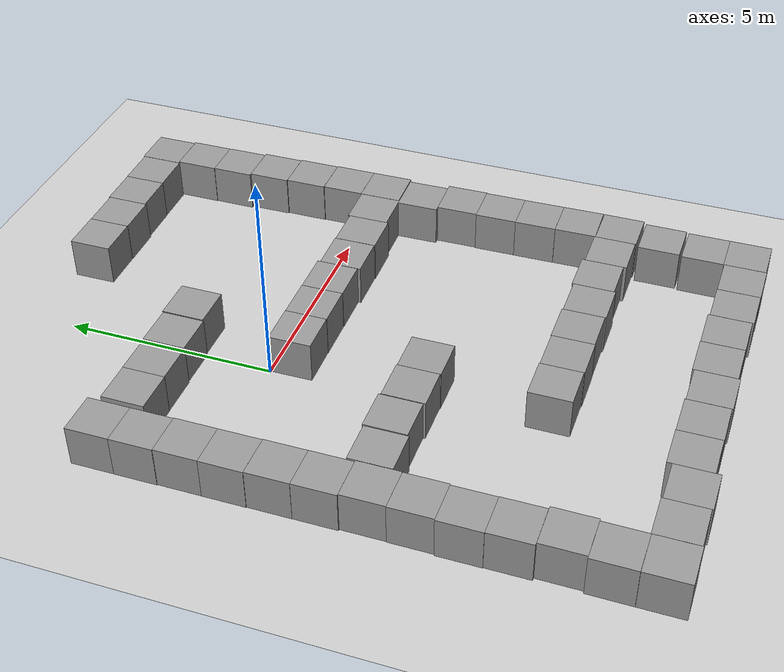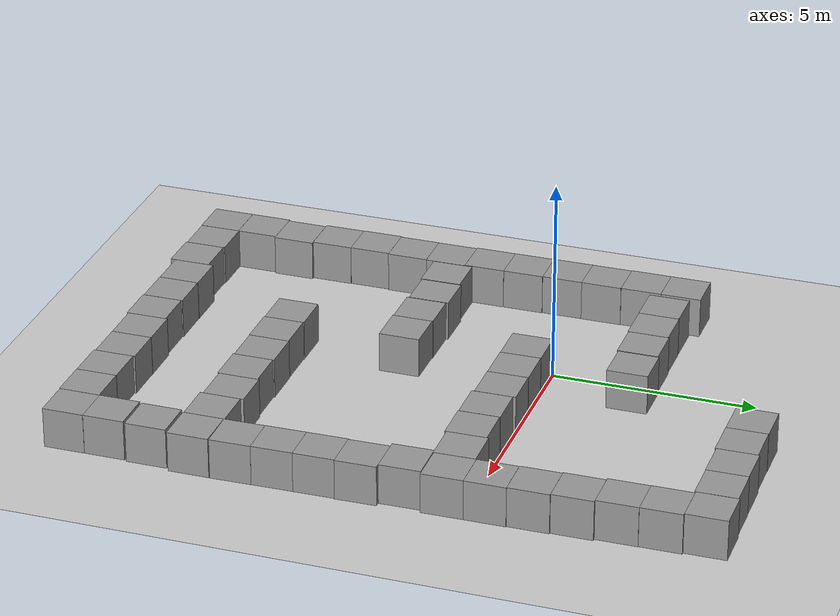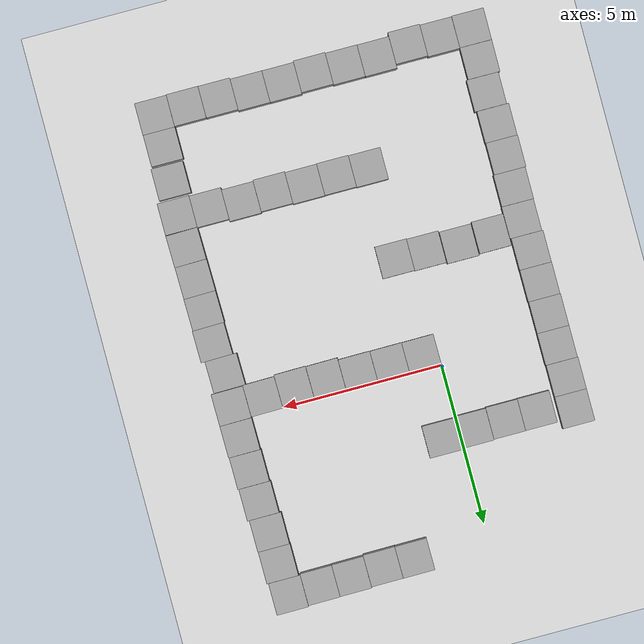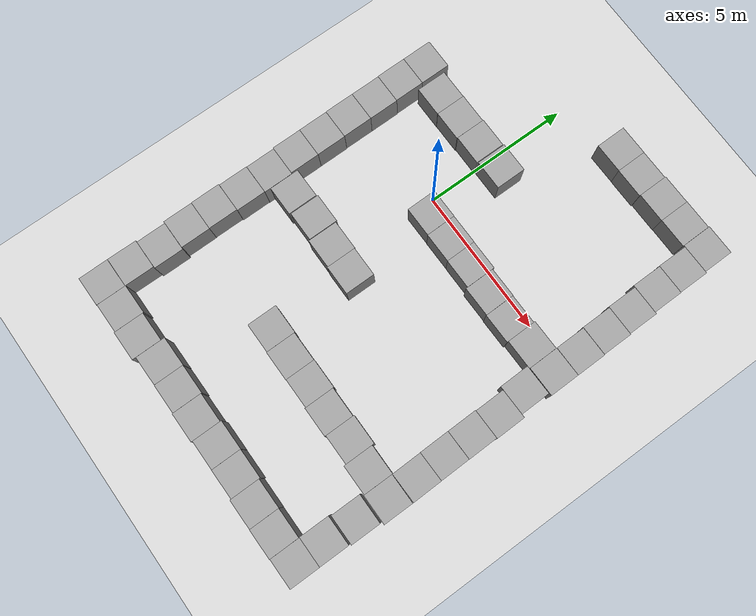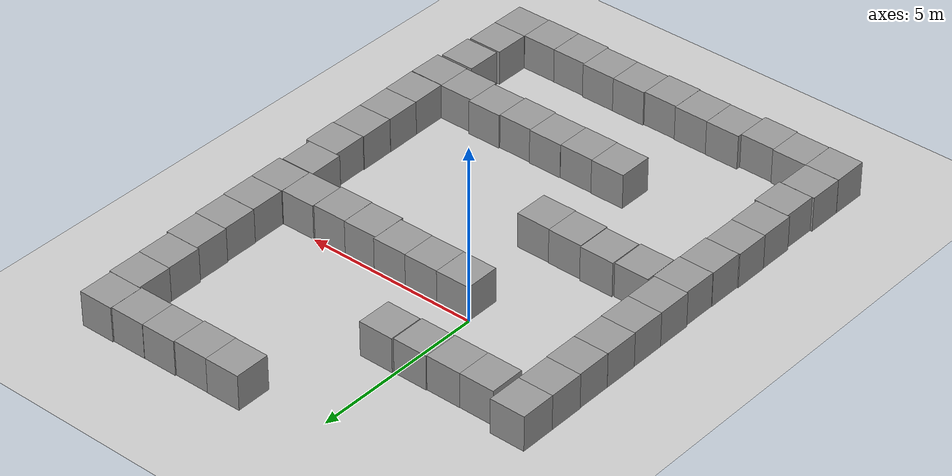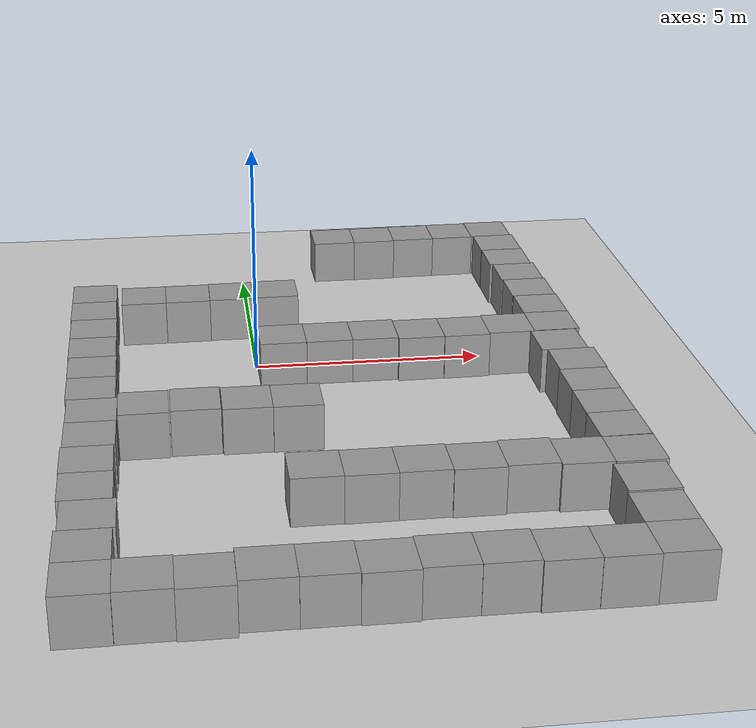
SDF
<sdf version="1.6">
 <world name="default">
  <light name="sun" type="directional">
   <pose>0 0 10 0 -0 0</pose>
   <diffuse>0.8 0.8 0.8 1</diffuse>
   <specular>0.1 0.1 0.1 1</specular>
   <attenuation>
    <range>1000</range>
    <constant>0.9</constant>
    <linear>0.01</linear>
    <quadratic>0.001</quadratic>
   </attenuation>
   <direction>-0.5 0.5 -1</direction>
  </light>
  <model name="ground_plane">
   <static>1</static>
   <link name="link">
    <collision name="collision">
     <geometry><plane><normal>0 0 1</normal><size>100 100</size></plane></geometry>
     <surface><friction><ode><mu>100</mu><mu2>50</mu2></ode></friction></surface>
    </collision>
    <visual name="visual">
     <cast_shadows>0</cast_shadows>
     <geometry><plane><normal>0 0 1</normal><size>100 100</size></plane></geometry>
     <material>
      <script><uri>file://media/materials/scripts/gazebo.material</uri><name>Gazebo/Grey</name></script>
     </material>
    </visual>
   </link>
  </model>
  <gravity>0 0 -9.8</gravity>
  <magnetic_field>6e-06 2.3e-05 -4.2e-05</magnetic_field>
  <atmosphere type="adiabatic"/>
  <physics name="default_physics" default="0" type="ode">
   <max_step_size>0.001</max_step_size>
   <real_time_factor>1</real_time_factor>
   <real_time_update_rate>1000</real_time_update_rate>
  </physics>
  <scene><ambient>0.4 0.4 0.4 1</ambient><background>0.7 0.7 0.7 1</background><shadows>1</shadows></scene>
  <spherical_coordinates>
   <surface_model>EARTH_WGS84</surface_model>
   <latitude_deg>0</latitude_deg>
   <longitude_deg>0</longitude_deg>
   <elevation>0</elevation>
   <heading_deg>0</heading_deg>
  </spherical_coordinates>
  <model name="unit_box_0">
   <pose>-3.4948 -4.69443 0.5 0 -0 0.000303</pose>
   <link name="link">
    <inertial>
     <mass>1</mass>
     <inertia>
      <ixx>0.166667</ixx>
      <ixy>0</ixy>
      <ixz>0</ixz>
      <iyy>0.166667</iyy>
      <iyz>0</iyz>
      <izz>0.166667</izz>
     </inertia>
    </inertial>
    <collision name="collision"><geometry><box><size>1 1 1</size></box></geometry></collision>
    <visual name="visual">
     <geometry><box><size>1 1 1</size></box></geometry>
     <material>
      <script><name>Gazebo/Grey</name><uri>file://media/materials/scripts/gazebo.material</uri></script>
     </material>
    </visual>
   </link>
  </model>
  <model name="unit_box_1">
   <pose>-3.48536 -3.69411 0.5 0 -0 0.000817</pose>
   <link name="link">
    <inertial>
     <mass>1</mass>
     <inertia>
      <ixx>0.166667</ixx>
      <ixy>0</ixy>
      <ixz>0</ixz>
      <iyy>0.166667</iyy>
      <iyz>0</iyz>
      <izz>0.166667</izz>
     </inertia>
    </inertial>
    <collision name="collision"><geometry><box><size>1 1 1</size></box></geometry></collision>
    <visual name="visual">
     <geometry><box><size>1 1 1</size></box></geometry>
     <material>
      <script><name>Gazebo/Grey</name><uri>file://media/materials/scripts/gazebo.material</uri></script>
     </material>
    </visual>
   </link>
  </model>
  <model name="unit_box_2">
   <pose>-3.52145 -2.69401 0.5 0 -0 0.001076</pose>
   <link name="link">
    <inertial>
     <mass>1</mass>
     <inertia>
      <ixx>0.166667</ixx>
      <ixy>0</ixy>
      <ixz>0</ixz>
      <iyy>0.166667</iyy>
      <iyz>0</iyz>
      <izz>0.166667</izz>
     </inertia>
    </inertial>
    <collision name="collision"><geometry><box><size>1 1 1</size></box></geometry></collision>
    <visual name="visual">
     <geometry><box><size>1 1 1</size></box></geometry>
     <material>
      <script><name>Gazebo/Grey</name><uri>file://media/materials/scripts/gazebo.material</uri></script>
     </material>
    </visual>
   </link>
  </model>
  <model name="unit_box_3">
   <pose>-3.52587 -1.69395 0.5 0 -0 0.001122</pose>
   <link name="link">
    <inertial>
     <mass>1</mass>
     <inertia>
      <ixx>0.166667</ixx>
      <ixy>0</ixy>
      <ixz>0</ixz>
      <iyy>0.166667</iyy>
      <iyz>0</iyz>
      <izz>0.166667</izz>
     </inertia>
    </inertial>
    <collision name="collision"><geometry><box><size>1 1 1</size></box></geometry></collision>
    <visual name="visual">
     <geometry><box><size>1 1 1</size></box></geometry>
     <material>
      <script><name>Gazebo/Grey</name><uri>file://media/materials/scripts/gazebo.material</uri></script>
     </material>
    </visual>
   </link>
  </model>
  <model name="unit_box_4">
   <pose>-3.53846 -0.693881 0.5 0 -0 0.001268</pose>
   <link name="link">
    <inertial>
     <mass>1</mass>
     <inertia>
      <ixx>0.166667</ixx>
      <ixy>0</ixy>
      <ixz>0</ixz>
      <iyy>0.166667</iyy>
      <iyz>0</iyz>
      <izz>0.166667</izz>
     </inertia>
    </inertial>
    <collision name="collision"><geometry><box><size>1 1 1</size></box></geometry></collision>
    <visual name="visual">
     <geometry><box><size>1 1 1</size></box></geometry>
     <material>
      <script><name>Gazebo/Grey</name><uri>file://media/materials/scripts/gazebo.material</uri></script>
     </material>
    </visual>
   </link>
  </model>
  <model name="unit_box_5">
   <pose>-3.53835 0.306148 0.499995 0 1e-05 0.001312</pose>
   <link name="link">
    <inertial>
     <mass>1</mass>
     <inertia>
      <ixx>0.166667</ixx>
      <ixy>0</ixy>
      <ixz>0</ixz>
      <iyy>0.166667</iyy>
      <iyz>0</iyz>
      <izz>0.166667</izz>
     </inertia>
    </inertial>
    <collision name="collision"><geometry><box><size>1 1 1</size></box></geometry></collision>
    <visual name="visual">
     <geometry><box><size>1 1 1</size></box></geometry>
     <material>
      <script><name>Gazebo/Grey</name><uri>file://media/materials/scripts/gazebo.material</uri></script>
     </material>
    </visual>
   </link>
  </model>
  <model name="unit_box_6">
   <pose>-3.55335 1.30622 0.499995 -0 -1e-05 0.001485</pose>
   <link name="link">
    <inertial>
     <mass>1</mass>
     <inertia>
      <ixx>0.166667</ixx>
      <ixy>0</ixy>
      <ixz>0</ixz>
      <iyy>0.166667</iyy>
      <iyz>0</iyz>
      <izz>0.166667</izz>
     </inertia>
    </inertial>
    <collision name="collision"><geometry><box><size>1 1 1</size></box></geometry></collision>
    <visual name="visual">
     <geometry><box><size>1 1 1</size></box></geometry>
     <material>
      <script><name>Gazebo/Grey</name><uri>file://media/materials/scripts/gazebo.material</uri></script>
     </material>
    </visual>
   </link>
  </model>
  <model name="unit_box_7">
   <pose>-3.55482 2.30626 0.5 0 -0 0.001579</pose>
   <link name="link">
    <inertial>
     <mass>1</mass>
     <inertia>
      <ixx>0.166667</ixx>
      <ixy>0</ixy>
      <ixz>0</ixz>
      <iyy>0.166667</iyy>
      <iyz>0</iyz>
      <izz>0.166667</izz>
     </inertia>
    </inertial>
    <collision name="collision"><geometry><box><size>1 1 1</size></box></geometry></collision>
    <visual name="visual">
     <geometry><box><size>1 1 1</size></box></geometry>
     <material>
      <script><name>Gazebo/Grey</name><uri>file://media/materials/scripts/gazebo.material</uri></script>
     </material>
    </visual>
   </link>
  </model>
  <model name="unit_box_16">
   <pose>2.32093 5.44304 0.5 0 -0 0.007681</pose>
   <link name="link">
    <inertial>
     <mass>1</mass>
     <inertia>
      <ixx>0.166667</ixx>
      <ixy>0</ixy>
      <ixz>0</ixz>
      <iyy>0.166667</iyy>
      <iyz>0</iyz>
      <izz>0.166667</izz>
     </inertia>
    </inertial>
    <collision name="collision"><geometry><box><size>1 1 1</size></box></geometry></collision>
    <visual name="visual">
     <geometry><box><size>1 1 1</size></box></geometry>
     <material>
      <script><name>Gazebo/Grey</name><uri>file://media/materials/scripts/gazebo.material</uri></script>
     </material>
    </visual>
   </link>
  </model>
  <model name="unit_box_9_clone">
   <pose>3.32103 5.44568 0.5 0 -0 0.00782</pose>
   <link name="link">
    <inertial>
     <mass>1</mass>
     <inertia>
      <ixx>0.166667</ixx>
      <ixy>0</ixy>
      <ixz>0</ixz>
      <iyy>0.166667</iyy>
      <iyz>0</iyz>
      <izz>0.166667</izz>
     </inertia>
    </inertial>
    <collision name="collision"><geometry><box><size>1 1 1</size></box></geometry></collision>
    <visual name="visual">
     <geometry><box><size>1 1 1</size></box></geometry>
     <material>
      <script><name>Gazebo/Grey</name><uri>file://media/materials/scripts/gazebo.material</uri></script>
     </material>
    </visual>
   </link>
  </model>
  <model name="unit_box_17">
   <pose>4.32085 5.48437 0.5 0 -0 0.007885</pose>
   <link name="link">
    <inertial>
     <mass>1</mass>
     <inertia>
      <ixx>0.166667</ixx>
      <ixy>0</ixy>
      <ixz>0</ixz>
      <iyy>0.166667</iyy>
      <iyz>0</iyz>
      <izz>0.166667</izz>
     </inertia>
    </inertial>
    <collision name="collision"><geometry><box><size>1 1 1</size></box></geometry></collision>
    <visual name="visual">
     <geometry><box><size>1 1 1</size></box></geometry>
     <material>
      <script><name>Gazebo/Grey</name><uri>file://media/materials/scripts/gazebo.material</uri></script>
     </material>
    </visual>
   </link>
  </model>
  <model name="unit_box_18">
   <pose>6.32205 5.53737 0.5 0 -0 0.005182</pose>
   <link name="link">
    <inertial>
     <mass>1</mass>
     <inertia>
      <ixx>0.166667</ixx>
      <ixy>0</ixy>
      <ixz>0</ixz>
      <iyy>0.166667</iyy>
      <iyz>0</iyz>
      <izz>0.166667</izz>
     </inertia>
    </inertial>
    <collision name="collision"><geometry><box><size>1 1 1</size></box></geometry></collision>
    <visual name="visual">
     <geometry><box><size>1 1 1</size></box></geometry>
     <material>
      <script><name>Gazebo/Grey</name><uri>file://media/materials/scripts/gazebo.material</uri></script>
     </material>
    </visual>
   </link>
  </model>
  <model name="unit_box_19">
   <pose>5.32077 5.49908 0.5 0 -0 0.007883</pose>
   <link name="link">
    <inertial>
     <mass>1</mass>
     <inertia>
      <ixx>0.166667</ixx>
      <ixy>0</ixy>
      <ixz>0</ixz>
      <iyy>0.166667</iyy>
      <iyz>0</iyz>
      <izz>0.166667</izz>
     </inertia>
    </inertial>
    <collision name="collision"><geometry><box><size>1 1 1</size></box></geometry></collision>
    <visual name="visual">
     <geometry><box><size>1 1 1</size></box></geometry>
     <material>
      <script><name>Gazebo/Grey</name><uri>file://media/materials/scripts/gazebo.material</uri></script>
     </material>
    </visual>
   </link>
  </model>
  <model name="unit_box_20">
   <pose>6.37514 4.53709 0.5 0 -0 0.004127</pose>
   <link name="link">
    <inertial>
     <mass>1</mass>
     <inertia>
      <ixx>0.166667</ixx>
      <ixy>0</ixy>
      <ixz>0</ixz>
      <iyy>0.166667</iyy>
      <iyz>0</iyz>
      <izz>0.166667</izz>
     </inertia>
    </inertial>
    <collision name="collision"><geometry><box><size>1 1 1</size></box></geometry></collision>
    <visual name="visual">
     <geometry><box><size>1 1 1</size></box></geometry>
     <material>
      <script><name>Gazebo/Grey</name><uri>file://media/materials/scripts/gazebo.material</uri></script>
     </material>
    </visual>
   </link>
  </model>
  <model name="unit_box_21">
   <pose>6.39055 3.53707 0.5 0 -0 0.004286</pose>
   <link name="link">
    <inertial>
     <mass>1</mass>
     <inertia>
      <ixx>0.166667</ixx>
      <ixy>0</ixy>
      <ixz>0</ixz>
      <iyy>0.166667</iyy>
      <iyz>0</iyz>
      <izz>0.166667</izz>
     </inertia>
    </inertial>
    <collision name="collision"><geometry><box><size>1 1 1</size></box></geometry></collision>
    <visual name="visual">
     <geometry><box><size>1 1 1</size></box></geometry>
     <material>
      <script><name>Gazebo/Grey</name><uri>file://media/materials/scripts/gazebo.material</uri></script>
     </material>
    </visual>
   </link>
  </model>
  <model name="unit_box_22">
   <pose>6.45425 2.53695 0.5 0 -0 0.005133</pose>
   <link name="link">
    <inertial>
     <mass>1</mass>
     <inertia>
      <ixx>0.166667</ixx>
      <ixy>0</ixy>
      <ixz>0</ixz>
      <iyy>0.166667</iyy>
      <iyz>0</iyz>
      <izz>0.166667</izz>
     </inertia>
    </inertial>
    <collision name="collision"><geometry><box><size>1 1 1</size></box></geometry></collision>
    <visual name="visual">
     <geometry><box><size>1 1 1</size></box></geometry>
     <material>
      <script><name>Gazebo/Grey</name><uri>file://media/materials/scripts/gazebo.material</uri></script>
     </material>
    </visual>
   </link>
  </model>
  <model name="unit_box_23">
   <pose>6.48843 1.53678 0.5 0 -0 0.005815</pose>
   <link name="link">
    <inertial>
     <mass>1</mass>
     <inertia>
      <ixx>0.166667</ixx>
      <ixy>0</ixy>
      <ixz>0</ixz>
      <iyy>0.166667</iyy>
      <iyz>0</iyz>
      <izz>0.166667</izz>
     </inertia>
    </inertial>
    <collision name="collision"><geometry><box><size>1 1 1</size></box></geometry></collision>
    <visual name="visual">
     <geometry><box><size>1 1 1</size></box></geometry>
     <material>
      <script><name>Gazebo/Grey</name><uri>file://media/materials/scripts/gazebo.material</uri></script>
     </material>
    </visual>
   </link>
  </model>
  <model name="unit_box_24">
   <pose>6.51368 0.535343 0.5 0 -0 0.009061</pose>
   <link name="link">
    <inertial>
     <mass>1</mass>
     <inertia>
      <ixx>0.166667</ixx>
      <ixy>0</ixy>
      <ixz>0</ixz>
      <iyy>0.166667</iyy>
      <iyz>0</iyz>
      <izz>0.166667</izz>
     </inertia>
    </inertial>
    <collision name="collision"><geometry><box><size>1 1 1</size></box></geometry></collision>
    <visual name="visual">
     <geometry><box><size>1 1 1</size></box></geometry>
     <material>
      <script><name>Gazebo/Grey</name><uri>file://media/materials/scripts/gazebo.material</uri></script>
     </material>
    </visual>
   </link>
  </model>
  <model name="unit_box_25">
   <pose>6.52384 -0.46588 0.5 0 -0 0.011501</pose>
   <link name="link">
    <inertial>
     <mass>1</mass>
     <inertia>
      <ixx>0.166667</ixx>
      <ixy>0</ixy>
      <ixz>0</ixz>
      <iyy>0.166667</iyy>
      <iyz>0</iyz>
      <izz>0.166667</izz>
     </inertia>
    </inertial>
    <collision name="collision"><geometry><box><size>1 1 1</size></box></geometry></collision>
    <visual name="visual">
     <geometry><box><size>1 1 1</size></box></geometry>
     <material>
      <script><name>Gazebo/Grey</name><uri>file://media/materials/scripts/gazebo.material</uri></script>
     </material>
    </visual>
   </link>
  </model>
  <model name="unit_box_26">
   <pose>6.44282 -1.48377 0.5 0 -0 0.01603</pose>
   <link name="link">
    <inertial>
     <mass>1</mass>
     <inertia>
      <ixx>0.166667</ixx>
      <ixy>0</ixy>
      <ixz>0</ixz>
      <iyy>0.166667</iyy>
      <iyz>0</iyz>
      <izz>0.166667</izz>
     </inertia>
    </inertial>
    <collision name="collision"><geometry><box><size>1 1 1</size></box></geometry></collision>
    <visual name="visual">
     <geometry><box><size>1 1 1</size></box></geometry>
     <material>
      <script><name>Gazebo/Grey</name><uri>file://media/materials/scripts/gazebo.material</uri></script>
     </material>
    </visual>
   </link>
  </model>
  <model name="unit_box_27">
   <pose>6.57563 -2.48178 0.5 0 -0 0.016056</pose>
   <link name="link">
    <inertial>
     <mass>1</mass>
     <inertia>
      <ixx>0.166667</ixx>
      <ixy>0</ixy>
      <ixz>0</ixz>
      <iyy>0.166667</iyy>
      <iyz>0</iyz>
      <izz>0.166667</izz>
     </inertia>
    </inertial>
    <collision name="collision"><geometry><box><size>1 1 1</size></box></geometry></collision>
    <visual name="visual">
     <geometry><box><size>1 1 1</size></box></geometry>
     <material>
      <script><name>Gazebo/Grey</name><uri>file://media/materials/scripts/gazebo.material</uri></script>
     </material>
    </visual>
   </link>
  </model>
  <model name="unit_box_28">
   <pose>6.57118 -3.48199 0.5 0 -0 0.016064</pose>
   <link name="link">
    <inertial>
     <mass>1</mass>
     <inertia>
      <ixx>0.166667</ixx>
      <ixy>0</ixy>
      <ixz>0</ixz>
      <iyy>0.166667</iyy>
      <iyz>0</iyz>
      <izz>0.166667</izz>
     </inertia>
    </inertial>
    <collision name="collision"><geometry><box><size>1 1 1</size></box></geometry></collision>
    <visual name="visual">
     <geometry><box><size>1 1 1</size></box></geometry>
     <material>
      <script><name>Gazebo/Grey</name><uri>file://media/materials/scripts/gazebo.material</uri></script>
     </material>
    </visual>
   </link>
  </model>
  <model name="unit_box_29">
   <pose>6.58457 -4.48235 0.5 0 -0 0.016936</pose>
   <link name="link">
    <inertial>
     <mass>1</mass>
     <inertia>
      <ixx>0.166667</ixx>
      <ixy>0</ixy>
      <ixz>0</ixz>
      <iyy>0.166667</iyy>
      <iyz>0</iyz>
      <izz>0.166667</izz>
     </inertia>
    </inertial>
    <collision name="collision"><geometry><box><size>1 1 1</size></box></geometry></collision>
    <visual name="visual">
     <geometry><box><size>1 1 1</size></box></geometry>
     <material>
      <script><name>Gazebo/Grey</name><uri>file://media/materials/scripts/gazebo.material</uri></script>
     </material>
    </visual>
   </link>
  </model>
  <model name="unit_box_32">
   <pose>-2.47865 -3.49151 0.5 0 -0 0.004554</pose>
   <link name="link">
    <inertial>
     <mass>1</mass>
     <inertia>
      <ixx>0.166667</ixx>
      <ixy>0</ixy>
      <ixz>0</ixz>
      <iyy>0.166667</iyy>
      <iyz>0</iyz>
      <izz>0.166667</izz>
     </inertia>
    </inertial>
    <collision name="collision"><geometry><box><size>1 1 1</size></box></geometry></collision>
    <visual name="visual">
     <geometry><box><size>1 1 1</size></box></geometry>
     <material>
      <script><name>Gazebo/Grey</name><uri>file://media/materials/scripts/gazebo.material</uri></script>
     </material>
    </visual>
   </link>
  </model>
  <model name="unit_box_33">
   <pose>-1.45375 -3.44877 0.5 0 -0 0</pose>
   <link name="link">
    <inertial>
     <mass>1</mass>
     <inertia>
      <ixx>0.166667</ixx>
      <ixy>0</ixy>
      <ixz>0</ixz>
      <iyy>0.166667</iyy>
      <iyz>0</iyz>
      <izz>0.166667</izz>
     </inertia>
    </inertial>
    <collision name="collision"><geometry><box><size>1 1 1</size></box></geometry></collision>
    <visual name="visual">
     <geometry><box><size>1 1 1</size></box></geometry>
     <material>
      <script><name>Gazebo/Grey</name><uri>file://media/materials/scripts/gazebo.material</uri></script>
     </material>
    </visual>
   </link>
  </model>
  <model name="unit_box_34">
   <pose>-3.52293 -5.69456 0.5 0 -0 0.000293</pose>
   <link name="link">
    <inertial>
     <mass>1</mass>
     <inertia>
      <ixx>0.166667</ixx>
      <ixy>0</ixy>
      <ixz>0</ixz>
      <iyy>0.166667</iyy>
      <iyz>0</iyz>
      <izz>0.166667</izz>
     </inertia>
    </inertial>
    <collision name="collision"><geometry><box><size>1 1 1</size></box></geometry></collision>
    <visual name="visual">
     <geometry><box><size>1 1 1</size></box></geometry>
     <material>
      <script><name>Gazebo/Grey</name><uri>file://media/materials/scripts/gazebo.material</uri></script>
     </material>
    </visual>
   </link>
  </model>
  <model name="unit_box_35">
   <pose>-3.51205 -6.69456 0.5 0 -0 0.000291</pose>
   <link name="link">
    <inertial>
     <mass>1</mass>
     <inertia>
      <ixx>0.166667</ixx>
      <ixy>0</ixy>
      <ixz>0</ixz>
      <iyy>0.166667</iyy>
      <iyz>0</iyz>
      <izz>0.166667</izz>
     </inertia>
    </inertial>
    <collision name="collision"><geometry><box><size>1 1 1</size></box></geometry></collision>
    <visual name="visual">
     <geometry><box><size>1 1 1</size></box></geometry>
     <material>
      <script><name>Gazebo/Grey</name><uri>file://media/materials/scripts/gazebo.material</uri></script>
     </material>
    </visual>
   </link>
  </model>
  <model name="unit_box_36">
   <pose>6.60557 -5.4828 0.5 0 -0 0.018248</pose>
   <link name="link">
    <inertial>
     <mass>1</mass>
     <inertia>
      <ixx>0.166667</ixx>
      <ixy>0</ixy>
      <ixz>0</ixz>
      <iyy>0.166667</iyy>
      <iyz>0</iyz>
      <izz>0.166667</izz>
     </inertia>
    </inertial>
    <collision name="collision"><geometry><box><size>1 1 1</size></box></geometry></collision>
    <visual name="visual">
     <geometry><box><size>1 1 1</size></box></geometry>
     <material>
      <script><name>Gazebo/Grey</name><uri>file://media/materials/scripts/gazebo.material</uri></script>
     </material>
    </visual>
   </link>
  </model>
  <model name="unit_box_37">
   <pose>6.61532 -6.49482 0.5 0 -0 0.001622</pose>
   <link name="link">
    <inertial>
     <mass>1</mass>
     <inertia>
      <ixx>0.166667</ixx>
      <ixy>0</ixy>
      <ixz>0</ixz>
      <iyy>0.166667</iyy>
      <iyz>0</iyz>
      <izz>0.166667</izz>
     </inertia>
    </inertial>
    <collision name="collision"><geometry><box><size>1 1 1</size></box></geometry></collision>
    <visual name="visual">
     <geometry><box><size>1 1 1</size></box></geometry>
     <material>
      <script><name>Gazebo/Grey</name><uri>file://media/materials/scripts/gazebo.material</uri></script>
     </material>
    </visual>
   </link>
  </model>
  <model name="unit_box_30_0">
   <pose>-2.43913 2.06549 0.5 0 -0 2e-05</pose>
   <link name="link">
    <inertial>
     <mass>1</mass>
     <inertia>
      <ixx>0.166667</ixx>
      <ixy>0</ixy>
      <ixz>0</ixz>
      <iyy>0.166667</iyy>
      <iyz>0</iyz>
      <izz>0.166667</izz>
     </inertia>
    </inertial>
    <collision name="collision"><geometry><box><size>1 1 1</size></box></geometry></collision>
    <visual name="visual">
     <geometry><box><size>1 1 1</size></box></geometry>
     <material>
      <script><name>Gazebo/Grey</name><uri>file://media/materials/scripts/gazebo.material</uri></script>
     </material>
    </visual>
   </link>
  </model>
  <model name="unit_box_30_1">
   <pose>-1.43911 2.07233 0.5 0 -0 2.1e-05</pose>
   <link name="link">
    <inertial>
     <mass>1</mass>
     <inertia>
      <ixx>0.166667</ixx>
      <ixy>0</ixy>
      <ixz>0</ixz>
      <iyy>0.166667</iyy>
      <iyz>0</iyz>
      <izz>0.166667</izz>
     </inertia>
    </inertial>
    <collision name="collision"><geometry><box><size>1 1 1</size></box></geometry></collision>
    <visual name="visual">
     <geometry><box><size>1 1 1</size></box></geometry>
     <material>
      <script><name>Gazebo/Grey</name><uri>file://media/materials/scripts/gazebo.material</uri></script>
     </material>
    </visual>
   </link>
  </model>
  <model name="unit_box_30_2">
   <pose>0.519686 -0.497016 0.5 0 -0 0.008032</pose>
   <link name="link">
    <inertial>
     <mass>1</mass>
     <inertia>
      <ixx>0.166667</ixx>
      <ixy>0</ixy>
      <ixz>0</ixz>
      <iyy>0.166667</iyy>
      <iyz>0</iyz>
      <izz>0.166667</izz>
     </inertia>
    </inertial>
    <collision name="collision"><geometry><box><size>1 1 1</size></box></geometry></collision>
    <visual name="visual">
     <geometry><box><size>1 1 1</size></box></geometry>
     <material>
      <script><name>Gazebo/Grey</name><uri>file://media/materials/scripts/gazebo.material</uri></script>
     </material>
    </visual>
   </link>
  </model>
  <model name="unit_box_30_3">
   <pose>1.51977 -0.495444 0.5 0 -0 0.007903</pose>
   <link name="link">
    <inertial>
     <mass>1</mass>
     <inertia>
      <ixx>0.166667</ixx>
      <ixy>0</ixy>
      <ixz>0</ixz>
      <iyy>0.166667</iyy>
      <iyz>0</iyz>
      <izz>0.166667</izz>
     </inertia>
    </inertial>
    <collision name="collision"><geometry><box><size>1 1 1</size></box></geometry></collision>
    <visual name="visual">
     <geometry><box><size>1 1 1</size></box></geometry>
     <material>
      <script><name>Gazebo/Grey</name><uri>file://media/materials/scripts/gazebo.material</uri></script>
     </material>
    </visual>
   </link>
  </model>
  <model name="unit_box_30_4">
   <pose>2.51986 -0.494544 0.5 0 -0 0.007804</pose>
   <link name="link">
    <inertial>
     <mass>1</mass>
     <inertia>
      <ixx>0.166667</ixx>
      <ixy>0</ixy>
      <ixz>0</ixz>
      <iyy>0.166667</iyy>
      <iyz>0</iyz>
      <izz>0.166667</izz>
     </inertia>
    </inertial>
    <collision name="collision"><geometry><box><size>1 1 1</size></box></geometry></collision>
    <visual name="visual">
     <geometry><box><size>1 1 1</size></box></geometry>
     <material>
      <script><name>Gazebo/Grey</name><uri>file://media/materials/scripts/gazebo.material</uri></script>
     </material>
    </visual>
   </link>
  </model>
  <model name="unit_box_30_5">
   <pose>3.52183 -0.551106 0.5 0 -0 0.010663</pose>
   <link name="link">
    <inertial>
     <mass>1</mass>
     <inertia>
      <ixx>0.166667</ixx>
      <ixy>0</ixy>
      <ixz>0</ixz>
      <iyy>0.166667</iyy>
      <iyz>0</iyz>
      <izz>0.166667</izz>
     </inertia>
    </inertial>
    <collision name="collision"><geometry><box><size>1 1 1</size></box></geometry></collision>
    <visual name="visual">
     <geometry><box><size>1 1 1</size></box></geometry>
     <material>
      <script><name>Gazebo/Grey</name><uri>file://media/materials/scripts/gazebo.material</uri></script>
     </material>
    </visual>
   </link>
  </model>
  <model name="unit_box_30_6">
   <pose>4.52348 -0.553668 0.5 0 -0 0.013538</pose>
   <link name="link">
    <inertial>
     <mass>1</mass>
     <inertia>
      <ixx>0.166667</ixx>
      <ixy>0</ixy>
      <ixz>0</ixz>
      <iyy>0.166667</iyy>
      <iyz>0</iyz>
      <izz>0.166667</izz>
     </inertia>
    </inertial>
    <collision name="collision"><geometry><box><size>1 1 1</size></box></geometry></collision>
    <visual name="visual">
     <geometry><box><size>1 1 1</size></box></geometry>
     <material>
      <script><name>Gazebo/Grey</name><uri>file://media/materials/scripts/gazebo.material</uri></script>
     </material>
    </visual>
   </link>
  </model>
  <model name="unit_box_30_7">
   <pose>5.5231 -0.496846 0.5 0 -0 0.012963</pose>
   <link name="link">
    <inertial>
     <mass>1</mass>
     <inertia>
      <ixx>0.166667</ixx>
      <ixy>0</ixy>
      <ixz>0</ixz>
      <iyy>0.166667</iyy>
      <iyz>0</iyz>
      <izz>0.166667</izz>
     </inertia>
    </inertial>
    <collision name="collision"><geometry><box><size>1 1 1</size></box></geometry></collision>
    <visual name="visual">
     <geometry><box><size>1 1 1</size></box></geometry>
     <material>
      <script><name>Gazebo/Grey</name><uri>file://media/materials/scripts/gazebo.material</uri></script>
     </material>
    </visual>
   </link>
  </model>
  <model name="unit_box_30_8">
   <pose>-0.438608 2.09416 0.5 0 -0 0</pose>
   <link name="link">
    <inertial>
     <mass>1</mass>
     <inertia>
      <ixx>0.166667</ixx>
      <ixy>0</ixy>
      <ixz>0</ixz>
      <iyy>0.166667</iyy>
      <iyz>0</iyz>
      <izz>0.166667</izz>
     </inertia>
    </inertial>
    <collision name="collision"><geometry><box><size>1 1 1</size></box></geometry></collision>
    <visual name="visual">
     <geometry><box><size>1 1 1</size></box></geometry>
     <material>
      <script><name>Gazebo/Grey</name><uri>file://media/materials/scripts/gazebo.material</uri></script>
     </material>
    </visual>
   </link>
  </model>
  <model name="unit_box_30_9">
   <pose>0.58674 2.12825 0.5 0 -0 0</pose>
   <link name="link">
    <inertial>
     <mass>1</mass>
     <inertia>
      <ixx>0.166667</ixx>
      <ixy>0</ixy>
      <ixz>0</ixz>
      <iyy>0.166667</iyy>
      <iyz>0</iyz>
      <izz>0.166667</izz>
     </inertia>
    </inertial>
    <collision name="collision"><geometry><box><size>1 1 1</size></box></geometry></collision>
    <visual name="visual">
     <geometry><box><size>1 1 1</size></box></geometry>
     <material>
      <script><name>Gazebo/Grey</name><uri>file://media/materials/scripts/gazebo.material</uri></script>
     </material>
    </visual>
   </link>
  </model>
  <model name="unit_box_30_10">
   <pose>-0.437084 -3.4979 0.5 0 0 -5.7e-05</pose>
   <link name="link">
    <inertial>
     <mass>1</mass>
     <inertia>
      <ixx>0.166667</ixx>
      <ixy>0</ixy>
      <ixz>0</ixz>
      <iyy>0.166667</iyy>
      <iyz>0</iyz>
      <izz>0.166667</izz>
     </inertia>
    </inertial>
    <collision name="collision"><geometry><box><size>1 1 1</size></box></geometry></collision>
    <visual name="visual">
     <geometry><box><size>1 1 1</size></box></geometry>
     <material>
      <script><name>Gazebo/Grey</name><uri>file://media/materials/scripts/gazebo.material</uri></script>
     </material>
    </visual>
   </link>
  </model>
  <model name="unit_box_30_11">
   <pose>0.562917 -3.51471 0.5 0 0 -5.8e-05</pose>
   <link name="link">
    <inertial>
     <mass>1</mass>
     <inertia>
      <ixx>0.166667</ixx>
      <ixy>0</ixy>
      <ixz>0</ixz>
      <iyy>0.166667</iyy>
      <iyz>0</iyz>
      <izz>0.166667</izz>
     </inertia>
    </inertial>
    <collision name="collision"><geometry><box><size>1 1 1</size></box></geometry></collision>
    <visual name="visual">
     <geometry><box><size>1 1 1</size></box></geometry>
     <material>
      <script><name>Gazebo/Grey</name><uri>file://media/materials/scripts/gazebo.material</uri></script>
     </material>
    </visual>
   </link>
  </model>
  <model name="unit_box_30_19">
   <pose>-3.44898 -7.69594 0.5 0 0 -0.002483</pose>
   <link name="link">
    <inertial>
     <mass>1</mass>
     <inertia>
      <ixx>0.166667</ixx>
      <ixy>0</ixy>
      <ixz>0</ixz>
      <iyy>0.166667</iyy>
      <iyz>0</iyz>
      <izz>0.166667</izz>
     </inertia>
    </inertial>
    <collision name="collision"><geometry><box><size>1 1 1</size></box></geometry></collision>
    <visual name="visual">
     <geometry><box><size>1 1 1</size></box></geometry>
     <material>
      <script><name>Gazebo/Grey</name><uri>file://media/materials/scripts/gazebo.material</uri></script>
     </material>
    </visual>
   </link>
  </model>
  <model name="unit_box_30_20">
   <pose>-3.50734 -8.69699 0.499995 1e-05 -0 -0.005129</pose>
   <link name="link">
    <inertial>
     <mass>1</mass>
     <inertia>
      <ixx>0.166667</ixx>
      <ixy>0</ixy>
      <ixz>0</ixz>
      <iyy>0.166667</iyy>
      <iyz>0</iyz>
      <izz>0.166667</izz>
     </inertia>
    </inertial>
    <collision name="collision"><geometry><box><size>1 1 1</size></box></geometry></collision>
    <visual name="visual">
     <geometry><box><size>1 1 1</size></box></geometry>
     <material>
      <script><name>Gazebo/Grey</name><uri>file://media/materials/scripts/gazebo.material</uri></script>
     </material>
    </visual>
   </link>
  </model>
  <model name="unit_box_30">
   <pose>-3.51064 -9.69865 0.5 0 0 -0.001787</pose>
   <link name="link">
    <inertial>
     <mass>1</mass>
     <inertia>
      <ixx>0.166667</ixx>
      <ixy>0</ixy>
      <ixz>0</ixz>
      <iyy>0.166667</iyy>
      <iyz>0</iyz>
      <izz>0.166667</izz>
     </inertia>
    </inertial>
    <collision name="collision"><geometry><box><size>1 1 1</size></box></geometry></collision>
    <visual name="visual">
     <geometry><box><size>1 1 1</size></box></geometry>
     <material>
      <script><name>Gazebo/Grey</name><uri>file://media/materials/scripts/gazebo.material</uri></script>
     </material>
    </visual>
   </link>
  </model>
  <model name="unit_box_31">
   <pose>-2.50973 -9.68513 0.5 0 -0 1.7e-05</pose>
   <link name="link">
    <inertial>
     <mass>1</mass>
     <inertia>
      <ixx>0.166667</ixx>
      <ixy>0</ixy>
      <ixz>0</ixz>
      <iyy>0.166667</iyy>
      <iyz>0</iyz>
      <izz>0.166667</izz>
     </inertia>
    </inertial>
    <collision name="collision"><geometry><box><size>1 1 1</size></box></geometry></collision>
    <visual name="visual">
     <geometry><box><size>1 1 1</size></box></geometry>
     <material>
      <script><name>Gazebo/Grey</name><uri>file://media/materials/scripts/gazebo.material</uri></script>
     </material>
    </visual>
   </link>
  </model>
  <model name="unit_box_38">
   <pose>-1.50972 -9.71682 0.5 0 -0 2.8e-05</pose>
   <link name="link">
    <inertial>
     <mass>1</mass>
     <inertia>
      <ixx>0.166667</ixx>
      <ixy>0</ixy>
      <ixz>0</ixz>
      <iyy>0.166667</iyy>
      <iyz>0</iyz>
      <izz>0.166667</izz>
     </inertia>
    </inertial>
    <collision name="collision"><geometry><box><size>1 1 1</size></box></geometry></collision>
    <visual name="visual">
     <geometry><box><size>1 1 1</size></box></geometry>
     <material>
      <script><name>Gazebo/Grey</name><uri>file://media/materials/scripts/gazebo.material</uri></script>
     </material>
    </visual>
   </link>
  </model>
  <model name="unit_box_39">
   <pose>-0.509358 -9.59516 0.499995 1e-05 0 0.00099</pose>
   <link name="link">
    <inertial>
     <mass>1</mass>
     <inertia>
      <ixx>0.166667</ixx>
      <ixy>0</ixy>
      <ixz>0</ixz>
      <iyy>0.166667</iyy>
      <iyz>0</iyz>
      <izz>0.166667</izz>
     </inertia>
    </inertial>
    <collision name="collision"><geometry><box><size>1 1 1</size></box></geometry></collision>
    <visual name="visual">
     <geometry><box><size>1 1 1</size></box></geometry>
     <material>
      <script><name>Gazebo/Grey</name><uri>file://media/materials/scripts/gazebo.material</uri></script>
     </material>
    </visual>
   </link>
  </model>
  <model name="unit_box_40">
   <pose>0.490741 -9.60181 0.499995 -0 1e-05 0.001151</pose>
   <link name="link">
    <inertial>
     <mass>1</mass>
     <inertia>
      <ixx>0.166667</ixx>
      <ixy>0</ixy>
      <ixz>0</ixz>
      <iyy>0.166667</iyy>
      <iyz>0</iyz>
      <izz>0.166667</izz>
     </inertia>
    </inertial>
    <collision name="collision"><geometry><box><size>1 1 1</size></box></geometry></collision>
    <visual name="visual">
     <geometry><box><size>1 1 1</size></box></geometry>
     <material>
      <script><name>Gazebo/Grey</name><uri>file://media/materials/scripts/gazebo.material</uri></script>
     </material>
    </visual>
   </link>
  </model>
  <model name="unit_box_41">
   <pose>1.49116 -9.62687 0.5 0 -0 0.001939</pose>
   <link name="link">
    <inertial>
     <mass>1</mass>
     <inertia>
      <ixx>0.166667</ixx>
      <ixy>0</ixy>
      <ixz>0</ixz>
      <iyy>0.166667</iyy>
      <iyz>0</iyz>
      <izz>0.166667</izz>
     </inertia>
    </inertial>
    <collision name="collision"><geometry><box><size>1 1 1</size></box></geometry></collision>
    <visual name="visual">
     <geometry><box><size>1 1 1</size></box></geometry>
     <material>
      <script><name>Gazebo/Grey</name><uri>file://media/materials/scripts/gazebo.material</uri></script>
     </material>
    </visual>
   </link>
  </model>
  <model name="unit_box_42_0">
   <pose>2.49108 -9.58328 0.499995 1e-05 -0 0.001937</pose>
   <link name="link">
    <inertial>
     <mass>1</mass>
     <inertia>
      <ixx>0.166667</ixx>
      <ixy>0</ixy>
      <ixz>0</ixz>
      <iyy>0.166667</iyy>
      <iyz>0</iyz>
      <izz>0.166667</izz>
     </inertia>
    </inertial>
    <collision name="collision"><geometry><box><size>1 1 1</size></box></geometry></collision>
    <visual name="visual">
     <geometry><box><size>1 1 1</size></box></geometry>
     <material>
      <script><name>Gazebo/Grey</name><uri>file://media/materials/scripts/gazebo.material</uri></script>
     </material>
    </visual>
   </link>
  </model>
  <model name="unit_box_42_1">
   <pose>3.4911 -9.58705 0.499995 1e-05 -0 0.001936</pose>
   <link name="link">
    <inertial>
     <mass>1</mass>
     <inertia>
      <ixx>0.166667</ixx>
      <ixy>0</ixy>
      <ixz>0</ixz>
      <iyy>0.166667</iyy>
      <iyz>0</iyz>
      <izz>0.166667</izz>
     </inertia>
    </inertial>
    <collision name="collision"><geometry><box><size>1 1 1</size></box></geometry></collision>
    <visual name="visual">
     <geometry><box><size>1 1 1</size></box></geometry>
     <material>
      <script><name>Gazebo/Grey</name><uri>file://media/materials/scripts/gazebo.material</uri></script>
     </material>
    </visual>
   </link>
  </model>
  <model name="unit_box_42_2">
   <pose>4.49119 -9.62843 0.5 0 -0 0.001921</pose>
   <link name="link">
    <inertial>
     <mass>1</mass>
     <inertia>
      <ixx>0.166667</ixx>
      <ixy>0</ixy>
      <ixz>0</ixz>
      <iyy>0.166667</iyy>
      <iyz>0</iyz>
      <izz>0.166667</izz>
     </inertia>
    </inertial>
    <collision name="collision"><geometry><box><size>1 1 1</size></box></geometry></collision>
    <visual name="visual">
     <geometry><box><size>1 1 1</size></box></geometry>
     <material>
      <script><name>Gazebo/Grey</name><uri>file://media/materials/scripts/gazebo.material</uri></script>
     </material>
    </visual>
   </link>
  </model>
  <model name="unit_box_42_3">
   <pose>5.49139 -9.63336 0.5 0 -0 0.00156</pose>
   <link name="link">
    <inertial>
     <mass>1</mass>
     <inertia>
      <ixx>0.166667</ixx>
      <ixy>0</ixy>
      <ixz>0</ixz>
      <iyy>0.166667</iyy>
      <iyz>0</iyz>
      <izz>0.166667</izz>
     </inertia>
    </inertial>
    <collision name="collision"><geometry><box><size>1 1 1</size></box></geometry></collision>
    <visual name="visual">
     <geometry><box><size>1 1 1</size></box></geometry>
     <material>
      <script><name>Gazebo/Grey</name><uri>file://media/materials/scripts/gazebo.material</uri></script>
     </material>
    </visual>
   </link>
  </model>
  <model name="unit_box_42_4">
   <pose>6.49169 -9.61729 0.5 0 -0 0.000934</pose>
   <link name="link">
    <inertial>
     <mass>1</mass>
     <inertia>
      <ixx>0.166667</ixx>
      <ixy>0</ixy>
      <ixz>0</ixz>
      <iyy>0.166667</iyy>
      <iyz>0</iyz>
      <izz>0.166667</izz>
     </inertia>
    </inertial>
    <collision name="collision"><geometry><box><size>1 1 1</size></box></geometry></collision>
    <visual name="visual">
     <geometry><box><size>1 1 1</size></box></geometry>
     <material>
      <script><name>Gazebo/Grey</name><uri>file://media/materials/scripts/gazebo.material</uri></script>
     </material>
    </visual>
   </link>
  </model>
  <model name="unit_box_42_5">
   <pose>6.48576 -8.61728 0.5 0 -0 0.000929</pose>
   <link name="link">
    <inertial>
     <mass>1</mass>
     <inertia>
      <ixx>0.166667</ixx>
      <ixy>0</ixy>
      <ixz>0</ixz>
      <iyy>0.166667</iyy>
      <iyz>0</iyz>
      <izz>0.166667</izz>
     </inertia>
    </inertial>
    <collision name="collision"><geometry><box><size>1 1 1</size></box></geometry></collision>
    <visual name="visual">
     <geometry><box><size>1 1 1</size></box></geometry>
     <material>
      <script><name>Gazebo/Grey</name><uri>file://media/materials/scripts/gazebo.material</uri></script>
     </material>
    </visual>
   </link>
  </model>
  <model name="unit_box_42_6">
   <pose>6.52437 -7.56104 0.5 0 -0 0.000959</pose>
   <link name="link">
    <inertial>
     <mass>1</mass>
     <inertia>
      <ixx>0.166667</ixx>
      <ixy>0</ixy>
      <ixz>0</ixz>
      <iyy>0.166667</iyy>
      <iyz>0</iyz>
      <izz>0.166667</izz>
     </inertia>
    </inertial>
    <collision name="collision"><geometry><box><size>1 1 1</size></box></geometry></collision>
    <visual name="visual">
     <geometry><box><size>1 1 1</size></box></geometry>
     <material>
      <script><name>Gazebo/Grey</name><uri>file://media/materials/scripts/gazebo.material</uri></script>
     </material>
    </visual>
   </link>
  </model>
  <model name="unit_box_42_7">
   <pose>2.61503 -6.414 0.5 0 -0 0.001457</pose>
   <link name="link">
    <inertial>
     <mass>1</mass>
     <inertia>
      <ixx>0.166667</ixx>
      <ixy>0</ixy>
      <ixz>0</ixz>
      <iyy>0.166667</iyy>
      <iyz>0</iyz>
      <izz>0.166667</izz>
     </inertia>
    </inertial>
    <collision name="collision"><geometry><box><size>1 1 1</size></box></geometry></collision>
    <visual name="visual">
     <geometry><box><size>1 1 1</size></box></geometry>
     <material>
      <script><name>Gazebo/Grey</name><uri>file://media/materials/scripts/gazebo.material</uri></script>
     </material>
    </visual>
   </link>
  </model>
  <model name="unit_box_42_9">
   <pose>5.61523 -6.47629 0.499995 1e-05 -0 0.001518</pose>
   <link name="link">
    <inertial>
     <mass>1</mass>
     <inertia>
      <ixx>0.166667</ixx>
      <ixy>0</ixy>
      <ixz>0</ixz>
      <iyy>0.166667</iyy>
      <iyz>0</iyz>
      <izz>0.166667</izz>
     </inertia>
    </inertial>
    <collision name="collision"><geometry><box><size>1 1 1</size></box></geometry></collision>
    <visual name="visual">
     <geometry><box><size>1 1 1</size></box></geometry>
     <material>
      <script><name>Gazebo/Grey</name><uri>file://media/materials/scripts/gazebo.material</uri></script>
     </material>
    </visual>
   </link>
  </model>
  <model name="unit_box_42_10">
   <pose>4.61512 -6.40373 0.499995 1e-05 -0 0.001518</pose>
   <link name="link">
    <inertial>
     <mass>1</mass>
     <inertia>
      <ixx>0.166667</ixx>
      <ixy>0</ixy>
      <ixz>0</ixz>
      <iyy>0.166667</iyy>
      <iyz>0</iyz>
      <izz>0.166667</izz>
     </inertia>
    </inertial>
    <collision name="collision"><geometry><box><size>1 1 1</size></box></geometry></collision>
    <visual name="visual">
     <geometry><box><size>1 1 1</size></box></geometry>
     <material>
      <script><name>Gazebo/Grey</name><uri>file://media/materials/scripts/gazebo.material</uri></script>
     </material>
    </visual>
   </link>
  </model>
  <model name="unit_box_42_11">
   <pose>3.61509 -6.44111 0.5 0 -0 0.001467</pose>
   <link name="link">
    <inertial>
     <mass>1</mass>
     <inertia>
      <ixx>0.166667</ixx>
      <ixy>0</ixy>
      <ixz>0</ixz>
      <iyy>0.166667</iyy>
      <iyz>0</iyz>
      <izz>0.166667</izz>
     </inertia>
    </inertial>
    <collision name="collision"><geometry><box><size>1 1 1</size></box></geometry></collision>
    <visual name="visual">
     <geometry><box><size>1 1 1</size></box></geometry>
     <material>
      <script><name>Gazebo/Grey</name><uri>file://media/materials/scripts/gazebo.material</uri></script>
     </material>
    </visual>
   </link>
  </model>
  <model name="unit_box_42_12">
   <pose>1.61504 -6.42489 0.5 0 -0 0.001441</pose>
   <link name="link">
    <inertial>
     <mass>1</mass>
     <inertia>
      <ixx>0.166667</ixx>
      <ixy>0</ixy>
      <ixz>0</ixz>
      <iyy>0.166667</iyy>
      <iyz>0</iyz>
      <izz>0.166667</izz>
     </inertia>
    </inertial>
    <collision name="collision"><geometry><box><size>1 1 1</size></box></geometry></collision>
    <visual name="visual">
     <geometry><box><size>1 1 1</size></box></geometry>
     <material>
      <script><name>Gazebo/Grey</name><uri>file://media/materials/scripts/gazebo.material</uri></script>
     </material>
    </visual>
   </link>
  </model>
  <model name="unit_box_42_13">
   <pose>0.614972 -6.40909 0.5 0 -0 0.001361</pose>
   <link name="link">
    <inertial>
     <mass>1</mass>
     <inertia>
      <ixx>0.166667</ixx>
      <ixy>0</ixy>
      <ixz>0</ixz>
      <iyy>0.166667</iyy>
      <iyz>0</iyz>
      <izz>0.166667</izz>
     </inertia>
    </inertial>
    <collision name="collision"><geometry><box><size>1 1 1</size></box></geometry></collision>
    <visual name="visual">
     <geometry><box><size>1 1 1</size></box></geometry>
     <material>
      <script><name>Gazebo/Grey</name><uri>file://media/materials/scripts/gazebo.material</uri></script>
     </material>
    </visual>
   </link>
  </model>
 </world>
</sdf>
